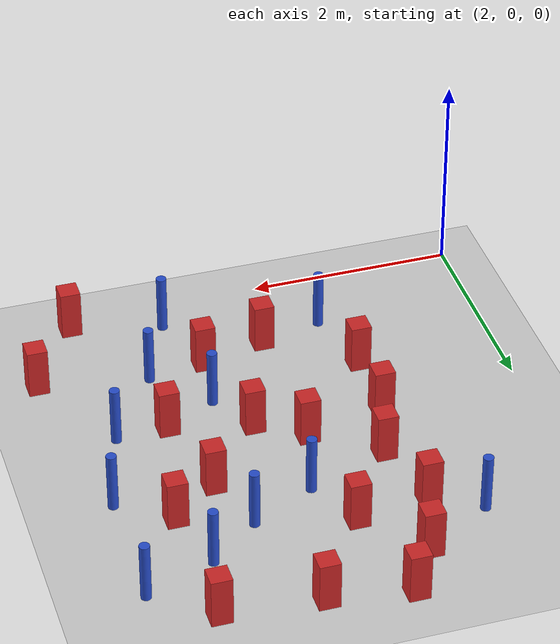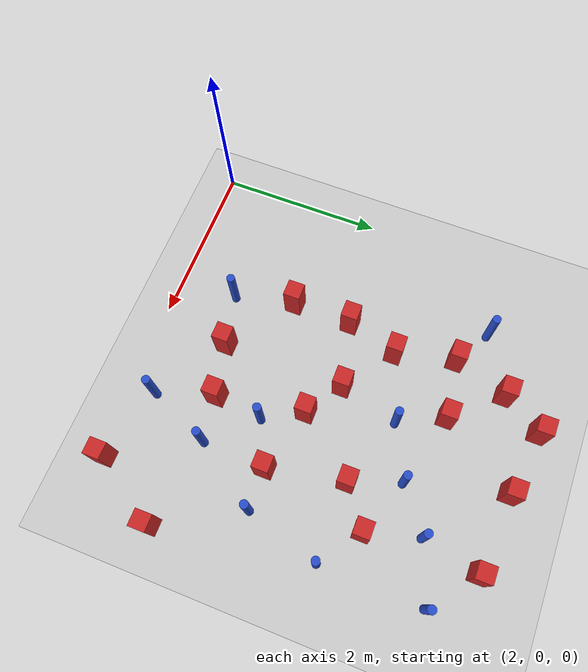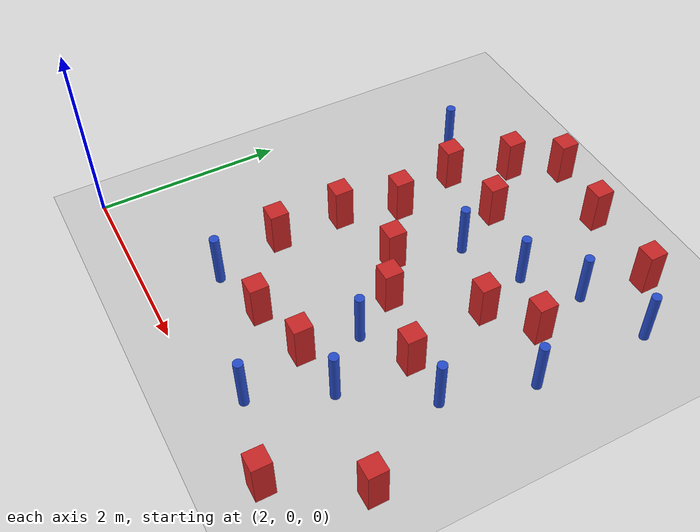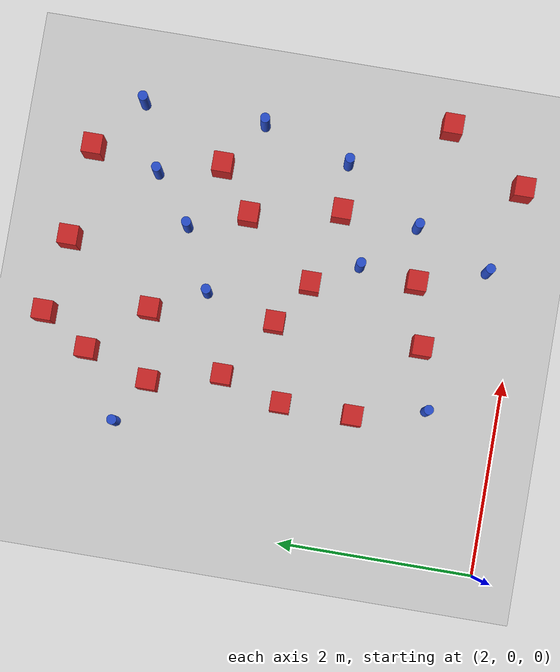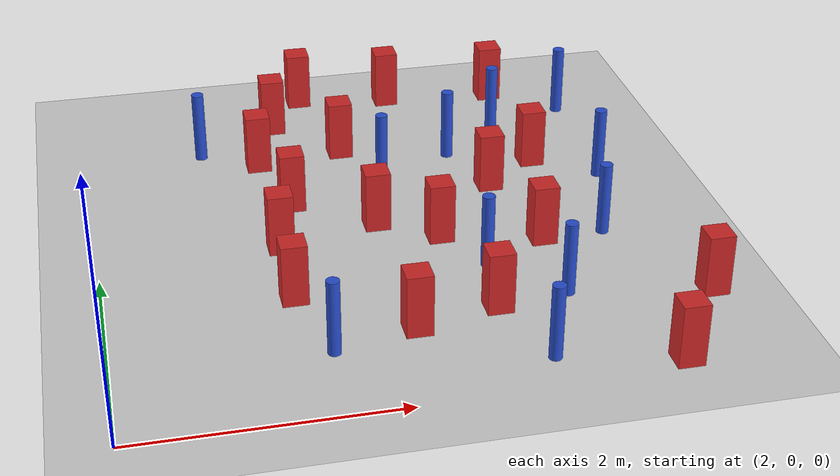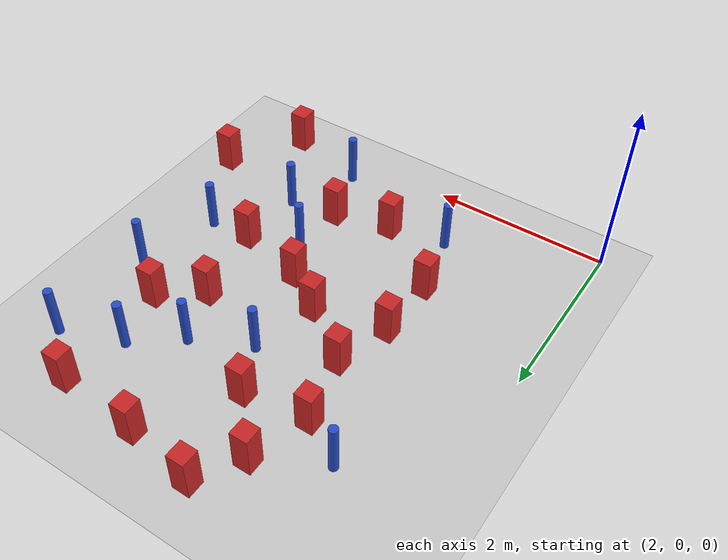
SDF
<sdf version="1.6">
 <world name="default">
  <model name="ground_plane">
   <static>1</static>
   <link name="link">
    <collision name="collision">
     <geometry><plane><normal>0 0 1</normal><size>100 100</size></plane></geometry>
     <surface><friction><ode><mu>100</mu><mu2>50</mu2></ode></friction></surface>
    </collision>
    <visual name="visual">
     <cast_shadows>0</cast_shadows>
     <geometry><plane><normal>0 0 1</normal><size>100 100</size></plane></geometry>
     <material>
      <ambient>1.0 1.0 1.0 1.0</ambient>
      <diffuse>0.8 0.8 0.8 1.0</diffuse>
      <specular>0.01 0.01 0.01 1.000000</specular>
     </material>
    </visual>
   </link>
  </model>
  <model name="pole_obstacle0">
   <static>true</static>
   <pose>2.95338815927 3.82318107499 2.88873142074e-08 -9.90536690232e-09 4.6021994898e-07 -1.20965994968e-07</pose>
   <link name="link">
    <pose>0 0 0.3 0 -0 0</pose>
    <inertial>
     <mass>1</mass>
     <inertia><ixx>0.145833</ixx><ixy>0</ixy><ixz>0</ixz><iyy>0.145833</iyy><iyz>0</iyz><izz>0.125</izz></inertia>
    </inertial>
    <collision name="collision">
     <geometry><cylinder><radius>0.05</radius><length>.6</length></cylinder></geometry>
    </collision>
    <visual name="visual">
     <geometry><cylinder><radius>0.05</radius><length>.6</length></cylinder></geometry>
     <material>
      <script><name>Gazebo/Blue</name><uri>file://media/materials/scripts/gazebo.material</uri></script>
     </material>
    </visual>
   </link>
  </model>
  <model name="square_post_obstacle7">
   <static>true</static>
   <pose>4.19814974283 2.39181814396 8.22691968438e-08 7.2212513382e-06 -7.54495500217e-07 2.29674213826e-05</pose>
   <link name="link">
    <pose>0 0 0.25 0 -0 0</pose>
    <inertial>
     <mass>100</mass>
     <inertia>
      <ixx>0.166667</ixx>
      <ixy>0</ixy>
      <ixz>0</ixz>
      <iyy>0.166667</iyy>
      <iyz>0</iyz>
      <izz>0.166667</izz>
     </inertia>
    </inertial>
    <collision name="collision"><geometry><box><size>.2 .2 .5</size></box></geometry></collision>
    <visual name="visual">
     <geometry><box><size>.2 .2 .5</size></box></geometry>
     <material>
      <script><name>Gazebo/Red</name><uri>file://media/materials/scripts/gazebo.material</uri></script>
     </material>
    </visual>
   </link>
  </model>
  <model name="square_post_obstacle58">
   <static>true</static>
   <pose>4.12640777615 3.65802413421 8.22691968438e-08 7.2212513382e-06 -7.54495500217e-07 2.29674213826e-05</pose>
   <link name="link">
    <pose>0 0 0.25 0 -0 0</pose>
    <inertial>
     <mass>100</mass>
     <inertia>
      <ixx>0.166667</ixx>
      <ixy>0</ixy>
      <ixz>0</ixz>
      <iyy>0.166667</iyy>
      <iyz>0</iyz>
      <izz>0.166667</izz>
     </inertia>
    </inertial>
    <collision name="collision"><geometry><box><size>.2 .2 .5</size></box></geometry></collision>
    <visual name="visual">
     <geometry><box><size>.2 .2 .5</size></box></geometry>
     <material>
      <script><name>Gazebo/Red</name><uri>file://media/materials/scripts/gazebo.material</uri></script>
     </material>
    </visual>
   </link>
  </model>
  <model name="square_post_obstacle71">
   <static>true</static>
   <pose>4.19457487001 0.886041474974 8.22691968438e-08 7.2212513382e-06 -7.54495500217e-07 2.29674213826e-05</pose>
   <link name="link">
    <pose>0 0 0.25 0 -0 0</pose>
    <inertial>
     <mass>100</mass>
     <inertia>
      <ixx>0.166667</ixx>
      <ixy>0</ixy>
      <ixz>0</ixz>
      <iyy>0.166667</iyy>
      <iyz>0</iyz>
      <izz>0.166667</izz>
     </inertia>
    </inertial>
    <collision name="collision"><geometry><box><size>.2 .2 .5</size></box></geometry></collision>
    <visual name="visual">
     <geometry><box><size>.2 .2 .5</size></box></geometry>
     <material>
      <script><name>Gazebo/Red</name><uri>file://media/materials/scripts/gazebo.material</uri></script>
     </material>
    </visual>
   </link>
  </model>
  <model name="square_post_obstacle78">
   <static>true</static>
   <pose>5.66142510613 4.49917808692 8.22691968438e-08 7.2212513382e-06 -7.54495500217e-07 2.29674213826e-05</pose>
   <link name="link">
    <pose>0 0 0.25 0 -0 0</pose>
    <inertial>
     <mass>100</mass>
     <inertia>
      <ixx>0.166667</ixx>
      <ixy>0</ixy>
      <ixz>0</ixz>
      <iyy>0.166667</iyy>
      <iyz>0</iyz>
      <izz>0.166667</izz>
     </inertia>
    </inertial>
    <collision name="collision"><geometry><box><size>.2 .2 .5</size></box></geometry></collision>
    <visual name="visual">
     <geometry><box><size>.2 .2 .5</size></box></geometry>
     <material>
      <script><name>Gazebo/Red</name><uri>file://media/materials/scripts/gazebo.material</uri></script>
     </material>
    </visual>
   </link>
  </model>
  <model name="square_post_obstacle85">
   <static>true</static>
   <pose>3.58765914998 2.828697927 8.22691968438e-08 7.2212513382e-06 -7.54495500217e-07 2.29674213826e-05</pose>
   <link name="link">
    <pose>0 0 0.25 0 -0 0</pose>
    <inertial>
     <mass>100</mass>
     <inertia>
      <ixx>0.166667</ixx>
      <ixy>0</ixy>
      <ixz>0</ixz>
      <iyy>0.166667</iyy>
      <iyz>0</iyz>
      <izz>0.166667</izz>
     </inertia>
    </inertial>
    <collision name="collision"><geometry><box><size>.2 .2 .5</size></box></geometry></collision>
    <visual name="visual">
     <geometry><box><size>.2 .2 .5</size></box></geometry>
     <material>
      <script><name>Gazebo/Red</name><uri>file://media/materials/scripts/gazebo.material</uri></script>
     </material>
    </visual>
   </link>
  </model>
  <model name="square_post_obstacle88">
   <static>true</static>
   <pose>3.62448370422 4.21825290989 8.22691968438e-08 7.2212513382e-06 -7.54495500217e-07 2.29674213826e-05</pose>
   <link name="link">
    <pose>0 0 0.25 0 -0 0</pose>
    <inertial>
     <mass>100</mass>
     <inertia>
      <ixx>0.166667</ixx>
      <ixy>0</ixy>
      <ixz>0</ixz>
      <iyy>0.166667</iyy>
      <iyz>0</iyz>
      <izz>0.166667</izz>
     </inertia>
    </inertial>
    <collision name="collision"><geometry><box><size>.2 .2 .5</size></box></geometry></collision>
    <visual name="visual">
     <geometry><box><size>.2 .2 .5</size></box></geometry>
     <material>
      <script><name>Gazebo/Red</name><uri>file://media/materials/scripts/gazebo.material</uri></script>
     </material>
    </visual>
   </link>
  </model>
  <model name="square_post_obstacle100">
   <static>true</static>
   <pose>6.4584873798 0.938837930503 8.22691968438e-08 7.2212513382e-06 -7.54495500217e-07 2.29674213826e-05</pose>
   <link name="link">
    <pose>0 0 0.25 0 -0 0</pose>
    <inertial>
     <mass>100</mass>
     <inertia>
      <ixx>0.166667</ixx>
      <ixy>0</ixy>
      <ixz>0</ixz>
      <iyy>0.166667</iyy>
      <iyz>0</iyz>
      <izz>0.166667</izz>
     </inertia>
    </inertial>
    <collision name="collision"><geometry><box><size>.2 .2 .5</size></box></geometry></collision>
    <visual name="visual">
     <geometry><box><size>.2 .2 .5</size></box></geometry>
     <material>
      <script><name>Gazebo/Red</name><uri>file://media/materials/scripts/gazebo.material</uri></script>
     </material>
    </visual>
   </link>
  </model>
  <model name="pole_obstacle109">
   <static>true</static>
   <pose>5.0589221295 0.348679534401 2.88873142074e-08 -9.90536689981e-09 4.60219948986e-07 -1.20965994962e-07</pose>
   <link name="link">
    <pose>0 0 0.3 0 -0 0</pose>
    <inertial>
     <mass>1</mass>
     <inertia><ixx>0.145833</ixx><ixy>0</ixy><ixz>0</ixz><iyy>0.145833</iyy><iyz>0</iyz><izz>0.125</izz></inertia>
    </inertial>
    <collision name="collision">
     <geometry><cylinder><radius>0.05</radius><length>.6</length></cylinder></geometry>
    </collision>
    <visual name="visual">
     <geometry><cylinder><radius>0.05</radius><length>.6</length></cylinder></geometry>
     <material>
      <script><name>Gazebo/Blue</name><uri>file://media/materials/scripts/gazebo.material</uri></script>
     </material>
    </visual>
   </link>
  </model>
  <model name="square_post_obstacle115">
   <static>true</static>
   <pose>3.39516028407 1.46669084562 8.22691968438e-08 7.2212513382e-06 -7.54495500217e-07 2.29674213826e-05</pose>
   <link name="link">
    <pose>0 0 0.25 0 -0 0</pose>
    <inertial>
     <mass>100</mass>
     <inertia>
      <ixx>0.166667</ixx>
      <ixy>0</ixy>
      <ixz>0</ixz>
      <iyy>0.166667</iyy>
      <iyz>0</iyz>
      <izz>0.166667</izz>
     </inertia>
    </inertial>
    <collision name="collision"><geometry><box><size>.2 .2 .5</size></box></geometry></collision>
    <visual name="visual">
     <geometry><box><size>.2 .2 .5</size></box></geometry>
     <material>
      <script><name>Gazebo/Red</name><uri>file://media/materials/scripts/gazebo.material</uri></script>
     </material>
    </visual>
   </link>
  </model>
  <model name="pole_obstacle119">
   <static>true</static>
   <pose>6.183975594 2.82008652512 2.88873142074e-08 -9.90536690245e-09 4.6021994898e-07 -1.20965994966e-07</pose>
   <link name="link">
    <pose>0 0 0.3 0 -0 0</pose>
    <inertial>
     <mass>1</mass>
     <inertia><ixx>0.145833</ixx><ixy>0</ixy><ixz>0</ixz><iyy>0.145833</iyy><iyz>0</iyz><izz>0.125</izz></inertia>
    </inertial>
    <collision name="collision">
     <geometry><cylinder><radius>0.05</radius><length>.6</length></cylinder></geometry>
    </collision>
    <visual name="visual">
     <geometry><cylinder><radius>0.05</radius><length>.6</length></cylinder></geometry>
     <material>
      <script><name>Gazebo/Blue</name><uri>file://media/materials/scripts/gazebo.material</uri></script>
     </material>
    </visual>
   </link>
  </model>
  <model name="square_post_obstacle121">
   <static>true</static>
   <pose>4.83354323299 1.04320328483 8.22691968438e-08 7.2212513382e-06 -7.54495500217e-07 2.29674213826e-05</pose>
   <link name="link">
    <pose>0 0 0.25 0 -0 0</pose>
    <inertial>
     <mass>100</mass>
     <inertia>
      <ixx>0.166667</ixx>
      <ixy>0</ixy>
      <ixz>0</ixz>
      <iyy>0.166667</iyy>
      <iyz>0</iyz>
      <izz>0.166667</izz>
     </inertia>
    </inertial>
    <collision name="collision"><geometry><box><size>.2 .2 .5</size></box></geometry></collision>
    <visual name="visual">
     <geometry><box><size>.2 .2 .5</size></box></geometry>
     <material>
      <script><name>Gazebo/Red</name><uri>file://media/materials/scripts/gazebo.material</uri></script>
     </material>
    </visual>
   </link>
  </model>
  <model name="square_post_obstacle126">
   <static>true</static>
   <pose>3.4026030802 2.19939433829 8.22691968438e-08 7.2212513382e-06 -7.54495500217e-07 2.29674213826e-05</pose>
   <link name="link">
    <pose>0 0 0.25 0 -0 0</pose>
    <inertial>
     <mass>100</mass>
     <inertia>
      <ixx>0.166667</ixx>
      <ixy>0</ixy>
      <ixz>0</ixz>
      <iyy>0.166667</iyy>
      <iyz>0</iyz>
      <izz>0.166667</izz>
     </inertia>
    </inertial>
    <collision name="collision"><geometry><box><size>.2 .2 .5</size></box></geometry></collision>
    <visual name="visual">
     <geometry><box><size>.2 .2 .5</size></box></geometry>
     <material>
      <script><name>Gazebo/Red</name><uri>file://media/materials/scripts/gazebo.material</uri></script>
     </material>
    </visual>
   </link>
  </model>
  <model name="pole_obstacle144">
   <static>true</static>
   <pose>5.92496279942 1.91511772824 2.88873142074e-08 -9.90536689445e-09 4.60219948999e-07 -1.20965994956e-07</pose>
   <link name="link">
    <pose>0 0 0.3 0 -0 0</pose>
    <inertial>
     <mass>1</mass>
     <inertia><ixx>0.145833</ixx><ixy>0</ixy><ixz>0</ixz><iyy>0.145833</iyy><iyz>0</iyz><izz>0.125</izz></inertia>
    </inertial>
    <collision name="collision">
     <geometry><cylinder><radius>0.05</radius><length>.6</length></cylinder></geometry>
    </collision>
    <visual name="visual">
     <geometry><cylinder><radius>0.05</radius><length>.6</length></cylinder></geometry>
     <material>
      <script><name>Gazebo/Blue</name><uri>file://media/materials/scripts/gazebo.material</uri></script>
     </material>
    </visual>
   </link>
  </model>
  <model name="square_post_obstacle146">
   <static>true</static>
   <pose>5.68999195986 3.17300451024 8.22691968438e-08 7.2212513382e-06 -7.54495500217e-07 2.29674213826e-05</pose>
   <link name="link">
    <pose>0 0 0.25 0 -0 0</pose>
    <inertial>
     <mass>100</mass>
     <inertia>
      <ixx>0.166667</ixx>
      <ixy>0</ixy>
      <ixz>0</ixz>
      <iyy>0.166667</iyy>
      <iyz>0</iyz>
      <izz>0.166667</izz>
     </inertia>
    </inertial>
    <collision name="collision"><geometry><box><size>.2 .2 .5</size></box></geometry></collision>
    <visual name="visual">
     <geometry><box><size>.2 .2 .5</size></box></geometry>
     <material>
      <script><name>Gazebo/Red</name><uri>file://media/materials/scripts/gazebo.material</uri></script>
     </material>
    </visual>
   </link>
  </model>
  <model name="square_post_obstacle148">
   <static>true</static>
   <pose>4.71321855465 4.58082167897 8.22691968438e-08 7.2212513382e-06 -7.54495500217e-07 2.29674213826e-05</pose>
   <link name="link">
    <pose>0 0 0.25 0 -0 0</pose>
    <inertial>
     <mass>100</mass>
     <inertia>
      <ixx>0.166667</ixx>
      <ixy>0</ixy>
      <ixz>0</ixz>
      <iyy>0.166667</iyy>
      <iyz>0</iyz>
      <izz>0.166667</izz>
     </inertia>
    </inertial>
    <collision name="collision"><geometry><box><size>.2 .2 .5</size></box></geometry></collision>
    <visual name="visual">
     <geometry><box><size>.2 .2 .5</size></box></geometry>
     <material>
      <script><name>Gazebo/Red</name><uri>file://media/materials/scripts/gazebo.material</uri></script>
     </material>
    </visual>
   </link>
  </model>
  <model name="pole_obstacle160">
   <static>true</static>
   <pose>5.39366125509 1.11874961538 2.88873142074e-08 -9.90536689445e-09 4.60219948999e-07 -1.20965994956e-07</pose>
   <link name="link">
    <pose>0 0 0.3 0 -0 0</pose>
    <inertial>
     <mass>1</mass>
     <inertia><ixx>0.145833</ixx><ixy>0</ixy><ixz>0</ixz><iyy>0.145833</iyy><iyz>0</iyz><izz>0.125</izz></inertia>
    </inertial>
    <collision name="collision">
     <geometry><cylinder><radius>0.05</radius><length>.6</length></cylinder></geometry>
    </collision>
    <visual name="visual">
     <geometry><cylinder><radius>0.05</radius><length>.6</length></cylinder></geometry>
     <material>
      <script><name>Gazebo/Blue</name><uri>file://media/materials/scripts/gazebo.material</uri></script>
     </material>
    </visual>
   </link>
  </model>
  <model name="pole_obstacle165">
   <static>true</static>
   <pose>5.51799572727 3.81327791024 2.88873142074e-08 -9.90536690245e-09 4.6021994898e-07 -1.20965994966e-07</pose>
   <link name="link">
    <pose>0 0 0.3 0 -0 0</pose>
    <inertial>
     <mass>1</mass>
     <inertia><ixx>0.145833</ixx><ixy>0</ixy><ixz>0</ixz><iyy>0.145833</iyy><iyz>0</iyz><izz>0.125</izz></inertia>
    </inertial>
    <collision name="collision">
     <geometry><cylinder><radius>0.05</radius><length>.6</length></cylinder></geometry>
    </collision>
    <visual name="visual">
     <geometry><cylinder><radius>0.05</radius><length>.6</length></cylinder></geometry>
     <material>
      <script><name>Gazebo/Blue</name><uri>file://media/materials/scripts/gazebo.material</uri></script>
     </material>
    </visual>
   </link>
  </model>
  <model name="square_post_obstacle164">
   <static>true</static>
   <pose>3.41084250722 3.55559821309 8.22691968438e-08 7.2212513382e-06 -7.54495500217e-07 2.29674213826e-05</pose>
   <link name="link">
    <pose>0 0 0.25 0 -0 0</pose>
    <inertial>
     <mass>100</mass>
     <inertia>
      <ixx>0.166667</ixx>
      <ixy>0</ixy>
      <ixz>0</ixz>
      <iyy>0.166667</iyy>
      <iyz>0</iyz>
      <izz>0.166667</izz>
     </inertia>
    </inertial>
    <collision name="collision"><geometry><box><size>.2 .2 .5</size></box></geometry></collision>
    <visual name="visual">
     <geometry><box><size>.2 .2 .5</size></box></geometry>
     <material>
      <script><name>Gazebo/Red</name><uri>file://media/materials/scripts/gazebo.material</uri></script>
     </material>
    </visual>
   </link>
  </model>
  <model name="pole_obstacle167">
   <static>true</static>
   <pose>5.02389496243 3.42561896942 2.88873142074e-08 -9.90536690245e-09 4.6021994898e-07 -1.20965994966e-07</pose>
   <link name="link">
    <pose>0 0 0.3 0 -0 0</pose>
    <inertial>
     <mass>1</mass>
     <inertia><ixx>0.145833</ixx><ixy>0</ixy><ixz>0</ixz><iyy>0.145833</iyy><iyz>0</iyz><izz>0.125</izz></inertia>
    </inertial>
    <collision name="collision">
     <geometry><cylinder><radius>0.05</radius><length>.6</length></cylinder></geometry>
    </collision>
    <visual name="visual">
     <geometry><cylinder><radius>0.05</radius><length>.6</length></cylinder></geometry>
     <material>
      <script><name>Gazebo/Blue</name><uri>file://media/materials/scripts/gazebo.material</uri></script>
     </material>
    </visual>
   </link>
  </model>
  <model name="pole_obstacle170">
   <static>true</static>
   <pose>4.39130514524 3.11764836191 2.88873142074e-08 -9.90536690245e-09 4.6021994898e-07 -1.20965994966e-07</pose>
   <link name="link">
    <pose>0 0 0.3 0 -0 0</pose>
    <inertial>
     <mass>1</mass>
     <inertia><ixx>0.145833</ixx><ixy>0</ixy><ixz>0</ixz><iyy>0.145833</iyy><iyz>0</iyz><izz>0.125</izz></inertia>
    </inertial>
    <collision name="collision">
     <geometry><cylinder><radius>0.05</radius><length>.6</length></cylinder></geometry>
    </collision>
    <visual name="visual">
     <geometry><cylinder><radius>0.05</radius><length>.6</length></cylinder></geometry>
     <material>
      <script><name>Gazebo/Blue</name><uri>file://media/materials/scripts/gazebo.material</uri></script>
     </material>
    </visual>
   </link>
  </model>
  <model name="pole_obstacle172">
   <static>true</static>
   <pose>6.20333316736 4.06715851524 2.88873142074e-08 -9.90536690842e-09 4.60219948965e-07 -1.20965994976e-07</pose>
   <link name="link">
    <pose>0 0 0.3 0 -0 0</pose>
    <inertial>
     <mass>1</mass>
     <inertia><ixx>0.145833</ixx><ixy>0</ixy><ixz>0</ixz><iyy>0.145833</iyy><iyz>0</iyz><izz>0.125</izz></inertia>
    </inertial>
    <collision name="collision">
     <geometry><cylinder><radius>0.05</radius><length>.6</length></cylinder></geometry>
    </collision>
    <visual name="visual">
     <geometry><cylinder><radius>0.05</radius><length>.6</length></cylinder></geometry>
     <material>
      <script><name>Gazebo/Blue</name><uri>file://media/materials/scripts/gazebo.material</uri></script>
     </material>
    </visual>
   </link>
  </model>
  <model name="square_post_obstacle188">
   <static>true</static>
   <pose>4.646985178 2.10201218294 8.22691968438e-08 7.2212513382e-06 -7.54495500217e-07 2.29674213826e-05</pose>
   <link name="link">
    <pose>0 0 0.25 0 -0 0</pose>
    <inertial>
     <mass>100</mass>
     <inertia>
      <ixx>0.166667</ixx>
      <ixy>0</ixy>
      <ixz>0</ixz>
      <iyy>0.166667</iyy>
      <iyz>0</iyz>
      <izz>0.166667</izz>
     </inertia>
    </inertial>
    <collision name="collision"><geometry><box><size>.2 .2 .5</size></box></geometry></collision>
    <visual name="visual">
     <geometry><box><size>.2 .2 .5</size></box></geometry>
     <material>
      <script><name>Gazebo/Red</name><uri>file://media/materials/scripts/gazebo.material</uri></script>
     </material>
    </visual>
   </link>
  </model>
  <model name="square_post_obstacle199">
   <static>true</static>
   <pose>3.92727232821 4.70599635257 8.22691968438e-08 7.2212513382e-06 -7.54495500217e-07 2.29674213826e-05</pose>
   <link name="link">
    <pose>0 0 0.25 0 -0 0</pose>
    <inertial>
     <mass>100</mass>
     <inertia>
      <ixx>0.166667</ixx>
      <ixy>0</ixy>
      <ixz>0</ixz>
      <iyy>0.166667</iyy>
      <iyz>0</iyz>
      <izz>0.166667</izz>
     </inertia>
    </inertial>
    <collision name="collision"><geometry><box><size>.2 .2 .5</size></box></geometry></collision>
    <visual name="visual">
     <geometry><box><size>.2 .2 .5</size></box></geometry>
     <material>
      <script><name>Gazebo/Red</name><uri>file://media/materials/scripts/gazebo.material</uri></script>
     </material>
    </visual>
   </link>
  </model>
  <model name="square_post_obstacle204">
   <static>true</static>
   <pose>5.23704843714 2.8291227421 8.22691968438e-08 7.2212513382e-06 -7.54495500217e-07 2.29674213826e-05</pose>
   <link name="link">
    <pose>0 0 0.25 0 -0 0</pose>
    <inertial>
     <mass>100</mass>
     <inertia>
      <ixx>0.166667</ixx>
      <ixy>0</ixy>
      <ixz>0</ixz>
      <iyy>0.166667</iyy>
      <iyz>0</iyz>
      <izz>0.166667</izz>
     </inertia>
    </inertial>
    <collision name="collision"><geometry><box><size>.2 .2 .5</size></box></geometry></collision>
    <visual name="visual">
     <geometry><box><size>.2 .2 .5</size></box></geometry>
     <material>
      <script><name>Gazebo/Red</name><uri>file://media/materials/scripts/gazebo.material</uri></script>
     </material>
    </visual>
   </link>
  </model>
  <model name="square_post_obstacle206">
   <static>true</static>
   <pose>5.94420899976 0.130853047506 8.22691968438e-08 7.2212513382e-06 -7.54495500217e-07 2.29674213826e-05</pose>
   <link name="link">
    <pose>0 0 0.25 0 -0 0</pose>
    <inertial>
     <mass>100</mass>
     <inertia>
      <ixx>0.166667</ixx>
      <ixy>0</ixy>
      <ixz>0</ixz>
      <iyy>0.166667</iyy>
      <iyz>0</iyz>
      <izz>0.166667</izz>
     </inertia>
    </inertial>
    <collision name="collision"><geometry><box><size>.2 .2 .5</size></box></geometry></collision>
    <visual name="visual">
     <geometry><box><size>.2 .2 .5</size></box></geometry>
     <material>
      <script><name>Gazebo/Red</name><uri>file://media/materials/scripts/gazebo.material</uri></script>
     </material>
    </visual>
   </link>
  </model>
  <model name="square_post_obstacle208">
   <static>true</static>
   <pose>5.42402946361 1.90537135167 8.22691968438e-08 7.2212513382e-06 -7.54495500217e-07 2.29674213826e-05</pose>
   <link name="link">
    <pose>0 0 0.25 0 -0 0</pose>
    <inertial>
     <mass>100</mass>
     <inertia>
      <ixx>0.166667</ixx>
      <ixy>0</ixy>
      <ixz>0</ixz>
      <iyy>0.166667</iyy>
      <iyz>0</iyz>
      <izz>0.166667</izz>
     </inertia>
    </inertial>
    <collision name="collision"><geometry><box><size>.2 .2 .5</size></box></geometry></collision>
    <visual name="visual">
     <geometry><box><size>.2 .2 .5</size></box></geometry>
     <material>
      <script><name>Gazebo/Red</name><uri>file://media/materials/scripts/gazebo.material</uri></script>
     </material>
    </visual>
   </link>
  </model>
  <model name="pole_obstacle195">
   <static>true</static>
   <pose>3.5666985051 0.731738275857 2.88873142074e-08 -9.90536689285e-09 4.60219949002e-07 -1.20965994953e-07</pose>
   <link name="link">
    <pose>0 0 0.3 0 -0 0</pose>
    <inertial>
     <mass>1</mass>
     <inertia><ixx>0.145833</ixx><ixy>0</ixy><ixz>0</ixz><iyy>0.145833</iyy><iyz>0</iyz><izz>0.125</izz></inertia>
    </inertial>
    <collision name="collision">
     <geometry><cylinder><radius>0.05</radius><length>.6</length></cylinder></geometry>
    </collision>
    <visual name="visual">
     <geometry><cylinder><radius>0.05</radius><length>.6</length></cylinder></geometry>
     <material>
      <script><name>Gazebo/Blue</name><uri>file://media/materials/scripts/gazebo.material</uri></script>
     </material>
    </visual>
   </link>
  </model>
  <model name="pole_obstacle212">
   <static>true</static>
   <pose>4.90831000913 1.63302002041 2.88873142074e-08 -9.90536689408e-09 4.60219948999e-07 -1.20965994956e-07</pose>
   <link name="link">
    <pose>0 0 0.3 0 -0 0</pose>
    <inertial>
     <mass>1</mass>
     <inertia><ixx>0.145833</ixx><ixy>0</ixy><ixz>0</ixz><iyy>0.145833</iyy><iyz>0</iyz><izz>0.125</izz></inertia>
    </inertial>
    <collision name="collision">
     <geometry><cylinder><radius>0.05</radius><length>.6</length></cylinder></geometry>
    </collision>
    <visual name="visual">
     <geometry><cylinder><radius>0.05</radius><length>.6</length></cylinder></geometry>
     <material>
      <script><name>Gazebo/Blue</name><uri>file://media/materials/scripts/gazebo.material</uri></script>
     </material>
    </visual>
   </link>
  </model>
 </world>
</sdf>
